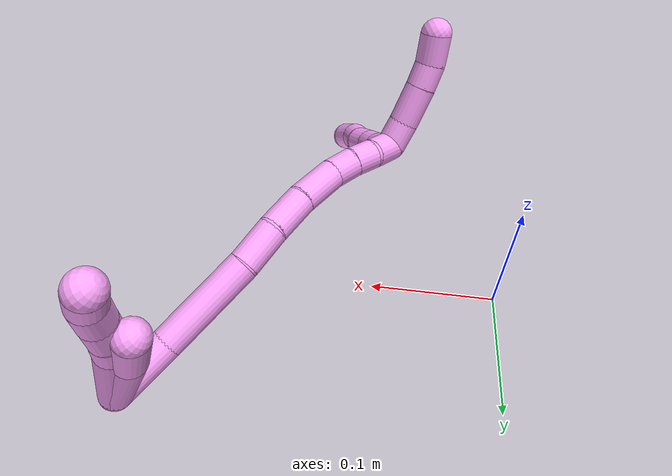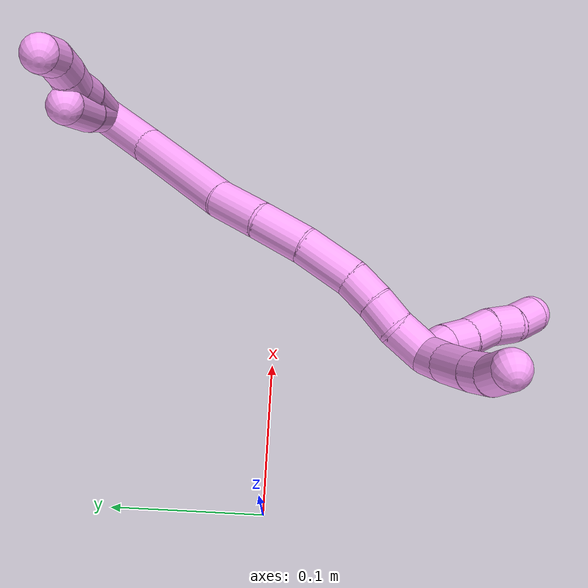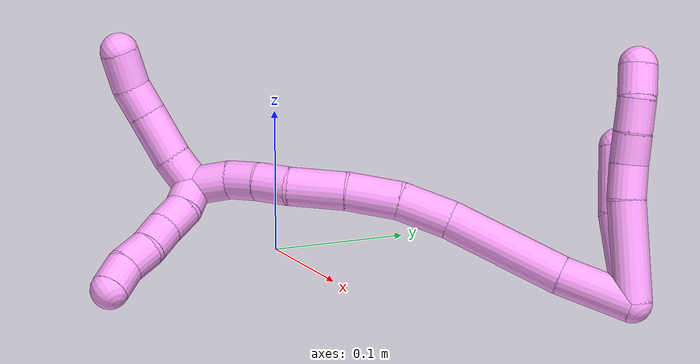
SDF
<sdf version="1.7">
 <world name="default">
  <model name="4">
   <static>0</static>
   <link name="4">
    <collision name="collision-cylinder-e_1_2_8">
     <pose>0.004061 0.021304 -0.024151 -2.41874 0.125442 -0.329258</pose>
     <geometry><cylinder><radius>0.0125</radius><length>0.06492</length></cylinder></geometry>
     <surface>
      <friction><ode><mu>1.16</mu><mu2>1.16</mu2><slip1>0</slip1><slip2>0</slip2></ode></friction>
      <contact><ode><kp>1e+06</kp><kd>1</kd><max_vel>0</max_vel><min_depth>0.001</min_depth></ode></contact>
     </surface>
    </collision>
    <visual name="visual-cylinder-e_1_2_8">
     <pose>0.004061 0.021304 -0.024151 -2.41874 0.125442 -0.329258</pose>
     <geometry><cylinder><radius>0.0125</radius><length>0.06492</length></cylinder></geometry>
     <material><ambient>1 0.65098 0.996078 1</ambient></material>
    </visual>
    <collision name="collision-cylinder-e_2_8_9">
     <pose>0.011093 0.050203 -0.056214 -2.37672 0.26451 -0.638805</pose>
     <geometry><cylinder><radius>0.0125</radius><length>0.022724</length></cylinder></geometry>
     <surface>
      <friction><ode><mu>1.16</mu><mu2>1.16</mu2><slip1>0</slip1><slip2>0</slip2></ode></friction>
      <contact><ode><kp>1e+06</kp><kd>1</kd><max_vel>0</max_vel><min_depth>0.001</min_depth></ode></contact>
     </surface>
    </collision>
    <visual name="visual-cylinder-e_2_8_9">
     <pose>0.011093 0.050203 -0.056214 -2.37672 0.26451 -0.638805</pose>
     <geometry><cylinder><radius>0.0125</radius><length>0.022724</length></cylinder></geometry>
     <material><ambient>1 0.65098 0.996078 1</ambient></material>
    </visual>
    <collision name="collision-cylinder-e_3_9_10">
     <pose>0.015741 0.065993 -0.069898 -2.18427 0.165821 -0.317593</pose>
     <geometry><cylinder><radius>0.0125</radius><length>0.020329</length></cylinder></geometry>
     <surface>
      <friction><ode><mu>1.16</mu><mu2>1.16</mu2><slip1>0</slip1><slip2>0</slip2></ode></friction>
      <contact><ode><kp>1e+06</kp><kd>1</kd><max_vel>0</max_vel><min_depth>0.001</min_depth></ode></contact>
     </surface>
    </collision>
    <visual name="visual-cylinder-e_3_9_10">
     <pose>0.015741 0.065993 -0.069898 -2.18427 0.165821 -0.317593</pose>
     <geometry><cylinder><radius>0.0125</radius><length>0.020329</length></cylinder></geometry>
     <material><ambient>1 0.65098 0.996078 1</ambient></material>
    </visual>
    <collision name="collision-cylinder-e_4_10_11">
     <pose>0.019818 0.08246 -0.0823 -2.24665 0.222632 -0.457639</pose>
     <geometry><cylinder><radius>0.0125</radius><length>0.021736</length></cylinder></geometry>
     <surface>
      <friction><ode><mu>1.16</mu><mu2>1.16</mu2><slip1>0</slip1><slip2>0</slip2></ode></friction>
      <contact><ode><kp>1e+06</kp><kd>1</kd><max_vel>0</max_vel><min_depth>0.001</min_depth></ode></contact>
     </surface>
    </collision>
    <visual name="visual-cylinder-e_4_10_11">
     <pose>0.019818 0.08246 -0.0823 -2.24665 0.222632 -0.457639</pose>
     <geometry><cylinder><radius>0.0125</radius><length>0.021736</length></cylinder></geometry>
     <material><ambient>1 0.65098 0.996078 1</ambient></material>
    </visual>
    <collision name="collision-cylinder-e_5_11_6">
     <pose>0.02538 0.096453 -0.096689 -2.50602 0.316905 -0.904424</pose>
     <geometry><cylinder><radius>0.0125</radius><length>0.020292</length></cylinder></geometry>
     <surface>
      <friction><ode><mu>1.16</mu><mu2>1.16</mu2><slip1>0</slip1><slip2>0</slip2></ode></friction>
      <contact><ode><kp>1e+06</kp><kd>1</kd><max_vel>0</max_vel><min_depth>0.001</min_depth></ode></contact>
     </surface>
    </collision>
    <visual name="visual-cylinder-e_5_11_6">
     <pose>0.02538 0.096453 -0.096689 -2.50602 0.316905 -0.904424</pose>
     <geometry><cylinder><radius>0.0125</radius><length>0.020292</length></cylinder></geometry>
     <material><ambient>1 0.65098 0.996078 1</ambient></material>
    </visual>
    <collision name="collision-cylinder-e_1_2_12">
     <pose>0.00427 0.01438 -0.024555 -2.61182 0.14895 -0.536844</pose>
     <geometry><cylinder><radius>0.0125</radius><length>0.057548</length></cylinder></geometry>
     <surface>
      <friction><ode><mu>1.16</mu><mu2>1.16</mu2><slip1>0</slip1><slip2>0</slip2></ode></friction>
      <contact><ode><kp>1e+06</kp><kd>1</kd><max_vel>0</max_vel><min_depth>0.001</min_depth></ode></contact>
     </surface>
    </collision>
    <visual name="visual-cylinder-e_1_2_12">
     <pose>0.00427 0.01438 -0.024555 -2.61182 0.14895 -0.536844</pose>
     <geometry><cylinder><radius>0.0125</radius><length>0.057548</length></cylinder></geometry>
     <material><ambient>1 0.65098 0.996078 1</ambient></material>
    </visual>
    <collision name="collision-cylinder-e_2_12_5">
     <pose>0.014211 0.041178 -0.065363 -2.48914 0.270455 -0.764745</pose>
     <geometry><cylinder><radius>0.0125</radius><length>0.042452</length></cylinder></geometry>
     <surface>
      <friction><ode><mu>1.16</mu><mu2>1.16</mu2><slip1>0</slip1><slip2>0</slip2></ode></friction>
      <contact><ode><kp>1e+06</kp><kd>1</kd><max_vel>0</max_vel><min_depth>0.001</min_depth></ode></contact>
     </surface>
    </collision>
    <visual name="visual-cylinder-e_2_12_5">
     <pose>0.014211 0.041178 -0.065363 -2.48914 0.270455 -0.764745</pose>
     <geometry><cylinder><radius>0.0125</radius><length>0.042452</length></cylinder></geometry>
     <material><ambient>1 0.65098 0.996078 1</ambient></material>
    </visual>
    <collision name="collision-cylinder-e_1_2_13">
     <pose>-0.014654 -0.003395 -0.018822 2.96317 -0.653763 -2.62568</pose>
     <geometry><cylinder><radius>0.0125</radius><length>0.048189</length></cylinder></geometry>
     <surface>
      <friction><ode><mu>1.16</mu><mu2>1.16</mu2><slip1>0</slip1><slip2>0</slip2></ode></friction>
      <contact><ode><kp>1e+06</kp><kd>1</kd><max_vel>0</max_vel><min_depth>0.001</min_depth></ode></contact>
     </surface>
    </collision>
    <visual name="visual-cylinder-e_1_2_13">
     <pose>-0.014654 -0.003395 -0.018822 2.96317 -0.653763 -2.62568</pose>
     <geometry><cylinder><radius>0.0125</radius><length>0.048189</length></cylinder></geometry>
     <material><ambient>1 0.65098 0.996078 1</ambient></material>
    </visual>
    <collision name="collision-cylinder-e_2_13_14">
     <pose>-0.051049 -0.009813 -0.070154 3.04883 -0.58747 -2.8371</pose>
     <geometry><cylinder><radius>0.0125</radius><length>0.078453</length></cylinder></geometry>
     <surface>
      <friction><ode><mu>1.16</mu><mu2>1.16</mu2><slip1>0</slip1><slip2>0</slip2></ode></friction>
      <contact><ode><kp>1e+06</kp><kd>1</kd><max_vel>0</max_vel><min_depth>0.001</min_depth></ode></contact>
     </surface>
    </collision>
    <visual name="visual-cylinder-e_2_13_14">
     <pose>-0.051049 -0.009813 -0.070154 3.04883 -0.58747 -2.8371</pose>
     <geometry><cylinder><radius>0.0125</radius><length>0.078453</length></cylinder></geometry>
     <material><ambient>1 0.65098 0.996078 1</ambient></material>
    </visual>
    <collision name="collision-cylinder-e_3_14_15">
     <pose>-0.084499 -0.014111 -0.115291 3.04104 -0.745164 -2.88552</pose>
     <geometry><cylinder><radius>0.0125</radius><length>0.034535</length></cylinder></geometry>
     <surface>
      <friction><ode><mu>1.16</mu><mu2>1.16</mu2><slip1>0</slip1><slip2>0</slip2></ode></friction>
      <contact><ode><kp>1e+06</kp><kd>1</kd><max_vel>0</max_vel><min_depth>0.001</min_depth></ode></contact>
     </surface>
    </collision>
    <visual name="visual-cylinder-e_3_14_15">
     <pose>-0.084499 -0.014111 -0.115291 3.04104 -0.745164 -2.88552</pose>
     <geometry><cylinder><radius>0.0125</radius><length>0.034535</length></cylinder></geometry>
     <material><ambient>1 0.65098 0.996078 1</ambient></material>
    </visual>
    <collision name="collision-cylinder-e_4_15_16">
     <pose>-0.109011 -0.019007 -0.138737 2.81856 -0.842897 -2.4444</pose>
     <geometry><cylinder><radius>0.0125</radius><length>0.034296</length></cylinder></geometry>
     <surface>
      <friction><ode><mu>1.16</mu><mu2>1.16</mu2><slip1>0</slip1><slip2>0</slip2></ode></friction>
      <contact><ode><kp>1e+06</kp><kd>1</kd><max_vel>0</max_vel><min_depth>0.001</min_depth></ode></contact>
     </surface>
    </collision>
    <visual name="visual-cylinder-e_4_15_16">
     <pose>-0.109011 -0.019007 -0.138737 2.81856 -0.842897 -2.4444</pose>
     <geometry><cylinder><radius>0.0125</radius><length>0.034296</length></cylinder></geometry>
     <material><ambient>1 0.65098 0.996078 1</ambient></material>
    </visual>
    <collision name="collision-cylinder-e_5_16_17">
     <pose>-0.135156 -0.028859 -0.160886 2.63884 -0.801112 -2.05127</pose>
     <geometry><cylinder><radius>0.0125</radius><length>0.03716</length></cylinder></geometry>
     <surface>
      <friction><ode><mu>1.16</mu><mu2>1.16</mu2><slip1>0</slip1><slip2>0</slip2></ode></friction>
      <contact><ode><kp>1e+06</kp><kd>1</kd><max_vel>0</max_vel><min_depth>0.001</min_depth></ode></contact>
     </surface>
    </collision>
    <visual name="visual-cylinder-e_5_16_17">
     <pose>-0.135156 -0.028859 -0.160886 2.63884 -0.801112 -2.05127</pose>
     <geometry><cylinder><radius>0.0125</radius><length>0.03716</length></cylinder></geometry>
     <material><ambient>1 0.65098 0.996078 1</ambient></material>
    </visual>
    <collision name="collision-cylinder-e_6_17_18">
     <pose>-0.154598 -0.039492 -0.179951 2.62414 -0.600726 -1.72742</pose>
     <geometry><cylinder><radius>0.0125</radius><length>0.02158</length></cylinder></geometry>
     <surface>
      <friction><ode><mu>1.16</mu><mu2>1.16</mu2><slip1>0</slip1><slip2>0</slip2></ode></friction>
      <contact><ode><kp>1e+06</kp><kd>1</kd><max_vel>0</max_vel><min_depth>0.001</min_depth></ode></contact>
     </surface>
    </collision>
    <visual name="visual-cylinder-e_6_17_18">
     <pose>-0.154598 -0.039492 -0.179951 2.62414 -0.600726 -1.72742</pose>
     <geometry><cylinder><radius>0.0125</radius><length>0.02158</length></cylinder></geometry>
     <material><ambient>1 0.65098 0.996078 1</ambient></material>
    </visual>
    <collision name="collision-cylinder-e_7_18_19">
     <pose>-0.165939 -0.048908 -0.194578 2.51266 -0.551457 -1.43185</pose>
     <geometry><cylinder><radius>0.0125</radius><length>0.02001</length></cylinder></geometry>
     <surface>
      <friction><ode><mu>1.16</mu><mu2>1.16</mu2><slip1>0</slip1><slip2>0</slip2></ode></friction>
      <contact><ode><kp>1e+06</kp><kd>1</kd><max_vel>0</max_vel><min_depth>0.001</min_depth></ode></contact>
     </surface>
    </collision>
    <visual name="visual-cylinder-e_7_18_19">
     <pose>-0.165939 -0.048908 -0.194578 2.51266 -0.551457 -1.43185</pose>
     <geometry><cylinder><radius>0.0125</radius><length>0.02001</length></cylinder></geometry>
     <material><ambient>1 0.65098 0.996078 1</ambient></material>
    </visual>
    <collision name="collision-cylinder-e_8_19_1">
     <pose>-0.179902 -0.061136 -0.207634 2.27783 -0.743266 -1.40388</pose>
     <geometry><cylinder><radius>0.0125</radius><length>0.025777</length></cylinder></geometry>
     <surface>
      <friction><ode><mu>1.16</mu><mu2>1.16</mu2><slip1>0</slip1><slip2>0</slip2></ode></friction>
      <contact><ode><kp>1e+06</kp><kd>1</kd><max_vel>0</max_vel><min_depth>0.001</min_depth></ode></contact>
     </surface>
    </collision>
    <visual name="visual-cylinder-e_8_19_1">
     <pose>-0.179902 -0.061136 -0.207634 2.27783 -0.743266 -1.40388</pose>
     <geometry><cylinder><radius>0.0125</radius><length>0.025777</length></cylinder></geometry>
     <material><ambient>1 0.65098 0.996078 1</ambient></material>
    </visual>
    <collision name="collision-cylinder-e_1_1_20">
     <pose>-0.195536 -0.070318 -0.206844 0.275713 -0.76312 -0.111214</pose>
     <geometry><cylinder><radius>0.0125</radius><length>0.02</length></cylinder></geometry>
     <surface>
      <friction><ode><mu>1.16</mu><mu2>1.16</mu2><slip1>0</slip1><slip2>0</slip2></ode></friction>
      <contact><ode><kp>1e+06</kp><kd>1</kd><max_vel>0</max_vel><min_depth>0.001</min_depth></ode></contact>
     </surface>
    </collision>
    <visual name="visual-cylinder-e_1_1_20">
     <pose>-0.195536 -0.070318 -0.206844 0.275713 -0.76312 -0.111214</pose>
     <geometry><cylinder><radius>0.0125</radius><length>0.02</length></cylinder></geometry>
     <material><ambient>1 0.65098 0.996078 1</ambient></material>
    </visual>
    <collision name="collision-cylinder-e_2_20_21">
     <pose>-0.211189 -0.074401 -0.195518 0.450732 -1.06364 -0.268159</pose>
     <geometry><cylinder><radius>0.0125</radius><length>0.02</length></cylinder></geometry>
     <surface>
      <friction><ode><mu>1.16</mu><mu2>1.16</mu2><slip1>0</slip1><slip2>0</slip2></ode></friction>
      <contact><ode><kp>1e+06</kp><kd>1</kd><max_vel>0</max_vel><min_depth>0.001</min_depth></ode></contact>
     </surface>
    </collision>
    <visual name="visual-cylinder-e_2_20_21">
     <pose>-0.211189 -0.074401 -0.195518 0.450732 -1.06364 -0.268159</pose>
     <geometry><cylinder><radius>0.0125</radius><length>0.02</length></cylinder></geometry>
     <material><ambient>1 0.65098 0.996078 1</ambient></material>
    </visual>
    <collision name="collision-cylinder-e_3_21_22">
     <pose>-0.228304 -0.07762 -0.185793 0.20317 -0.992578 -0.110283</pose>
     <geometry><cylinder><radius>0.0125</radius><length>0.02</length></cylinder></geometry>
     <surface>
      <friction><ode><mu>1.16</mu><mu2>1.16</mu2><slip1>0</slip1><slip2>0</slip2></ode></friction>
      <contact><ode><kp>1e+06</kp><kd>1</kd><max_vel>0</max_vel><min_depth>0.001</min_depth></ode></contact>
     </surface>
    </collision>
    <visual name="visual-cylinder-e_3_21_22">
     <pose>-0.228304 -0.07762 -0.185793 0.20317 -0.992578 -0.110283</pose>
     <geometry><cylinder><radius>0.0125</radius><length>0.02</length></cylinder></geometry>
     <material><ambient>1 0.65098 0.996078 1</ambient></material>
    </visual>
    <collision name="collision-cylinder-e_4_22_23">
     <pose>-0.245825 -0.081006 -0.177105 0.600313 -1.15464 -0.397858</pose>
     <geometry><cylinder><radius>0.0125</radius><length>0.02</length></cylinder></geometry>
     <surface>
      <friction><ode><mu>1.16</mu><mu2>1.16</mu2><slip1>0</slip1><slip2>0</slip2></ode></friction>
      <contact><ode><kp>1e+06</kp><kd>1</kd><max_vel>0</max_vel><min_depth>0.001</min_depth></ode></contact>
     </surface>
    </collision>
    <visual name="visual-cylinder-e_4_22_23">
     <pose>-0.245825 -0.081006 -0.177105 0.600313 -1.15464 -0.397858</pose>
     <geometry><cylinder><radius>0.0125</radius><length>0.02</length></cylinder></geometry>
     <material><ambient>1 0.65098 0.996078 1</ambient></material>
    </visual>
    <collision name="collision-cylinder-e_5_23_4">
     <pose>-0.262774 -0.085162 -0.167801 0.303952 -0.895096 -0.146777</pose>
     <geometry><cylinder><radius>0.0125</radius><length>0.02</length></cylinder></geometry>
     <surface>
      <friction><ode><mu>1.16</mu><mu2>1.16</mu2><slip1>0</slip1><slip2>0</slip2></ode></friction>
      <contact><ode><kp>1e+06</kp><kd>1</kd><max_vel>0</max_vel><min_depth>0.001</min_depth></ode></contact>
     </surface>
    </collision>
    <visual name="visual-cylinder-e_5_23_4">
     <pose>-0.262774 -0.085162 -0.167801 0.303952 -0.895096 -0.146777</pose>
     <geometry><cylinder><radius>0.0125</radius><length>0.02</length></cylinder></geometry>
     <material><ambient>1 0.65098 0.996078 1</ambient></material>
    </visual>
    <collision name="collision-cylinder-e_1_1_24">
     <pose>-0.192716 -0.064176 -0.223582 -2.73827 -0.367272 1.47495</pose>
     <geometry><cylinder><radius>0.0125</radius><length>0.022796</length></cylinder></geometry>
     <surface>
      <friction><ode><mu>1.16</mu><mu2>1.16</mu2><slip1>0</slip1><slip2>0</slip2></ode></friction>
      <contact><ode><kp>1e+06</kp><kd>1</kd><max_vel>0</max_vel><min_depth>0.001</min_depth></ode></contact>
     </surface>
    </collision>
    <visual name="visual-cylinder-e_1_1_24">
     <pose>-0.192716 -0.064176 -0.223582 -2.73827 -0.367272 1.47495</pose>
     <geometry><cylinder><radius>0.0125</radius><length>0.022796</length></cylinder></geometry>
     <material><ambient>1 0.65098 0.996078 1</ambient></material>
    </visual>
    <collision name="collision-cylinder-e_2_24_25">
     <pose>-0.201407 -0.052363 -0.247033 -2.63203 -0.285653 1.009</pose>
     <geometry><cylinder><radius>0.0125</radius><length>0.032635</length></cylinder></geometry>
     <surface>
      <friction><ode><mu>1.16</mu><mu2>1.16</mu2><slip1>0</slip1><slip2>0</slip2></ode></friction>
      <contact><ode><kp>1e+06</kp><kd>1</kd><max_vel>0</max_vel><min_depth>0.001</min_depth></ode></contact>
     </surface>
    </collision>
    <visual name="visual-cylinder-e_2_24_25">
     <pose>-0.201407 -0.052363 -0.247033 -2.63203 -0.285653 1.009</pose>
     <geometry><cylinder><radius>0.0125</radius><length>0.032635</length></cylinder></geometry>
     <material><ambient>1 0.65098 0.996078 1</ambient></material>
    </visual>
    <collision name="collision-cylinder-e_3_25_26">
     <pose>-0.209167 -0.039652 -0.26875 -2.57917 -0.320839 1.02121</pose>
     <geometry><cylinder><radius>0.0125</radius><length>0.020055</length></cylinder></geometry>
     <surface>
      <friction><ode><mu>1.16</mu><mu2>1.16</mu2><slip1>0</slip1><slip2>0</slip2></ode></friction>
      <contact><ode><kp>1e+06</kp><kd>1</kd><max_vel>0</max_vel><min_depth>0.001</min_depth></ode></contact>
     </surface>
    </collision>
    <visual name="visual-cylinder-e_3_25_26">
     <pose>-0.209167 -0.039652 -0.26875 -2.57917 -0.320839 1.02121</pose>
     <geometry><cylinder><radius>0.0125</radius><length>0.020055</length></cylinder></geometry>
     <material><ambient>1 0.65098 0.996078 1</ambient></material>
    </visual>
    <collision name="collision-cylinder-e_4_26_3">
     <pose>-0.214928 -0.025844 -0.284998 -2.32455 -0.213612 0.485582</pose>
     <geometry><cylinder><radius>0.0125</radius><length>0.024514</length></cylinder></geometry>
     <surface>
      <friction><ode><mu>1.16</mu><mu2>1.16</mu2><slip1>0</slip1><slip2>0</slip2></ode></friction>
      <contact><ode><kp>1e+06</kp><kd>1</kd><max_vel>0</max_vel><min_depth>0.001</min_depth></ode></contact>
     </surface>
    </collision>
    <visual name="visual-cylinder-e_4_26_3">
     <pose>-0.214928 -0.025844 -0.284998 -2.32455 -0.213612 0.485582</pose>
     <geometry><cylinder><radius>0.0125</radius><length>0.024514</length></cylinder></geometry>
     <material><ambient>1 0.65098 0.996078 1</ambient></material>
    </visual>
    <collision name="collision-sphere-3">
     <pose>-0.217526 -0.01711 -0.293196 0 -0 0</pose>
     <geometry><sphere><radius>0.0125</radius></sphere></geometry>
     <surface>
      <friction><ode><mu>1.16</mu><mu2>1.16</mu2><slip1>0</slip1><slip2>0</slip2></ode></friction>
      <contact><ode><kp>1e+06</kp><kd>1</kd><max_vel>0</max_vel><min_depth>0.001</min_depth></ode></contact>
     </surface>
    </collision>
    <visual name="visual-sphere-3">
     <pose>-0.217526 -0.01711 -0.293196 0 -0 0</pose>
     <geometry><sphere><radius>0.0125</radius></sphere></geometry>
     <material><ambient>1 0.65098 0.996078 1</ambient></material>
    </visual>
    <collision name="collision-sphere-26">
     <pose>-0.21233 -0.034578 -0.2768 0 -0 0</pose>
     <geometry><sphere><radius>0.0125</radius></sphere></geometry>
     <surface>
      <friction><ode><mu>1.16</mu><mu2>1.16</mu2><slip1>0</slip1><slip2>0</slip2></ode></friction>
      <contact><ode><kp>1e+06</kp><kd>1</kd><max_vel>0</max_vel><min_depth>0.001</min_depth></ode></contact>
     </surface>
    </collision>
    <visual name="visual-sphere-26">
     <pose>-0.21233 -0.034578 -0.2768 0 -0 0</pose>
     <geometry><sphere><radius>0.0125</radius></sphere></geometry>
     <material><ambient>1 0.65098 0.996078 1</ambient></material>
    </visual>
    <collision name="collision-sphere-25">
     <pose>-0.206005 -0.044726 -0.2607 0 -0 0</pose>
     <geometry><sphere><radius>0.0125</radius></sphere></geometry>
     <surface>
      <friction><ode><mu>1.16</mu><mu2>1.16</mu2><slip1>0</slip1><slip2>0</slip2></ode></friction>
      <contact><ode><kp>1e+06</kp><kd>1</kd><max_vel>0</max_vel><min_depth>0.001</min_depth></ode></contact>
     </surface>
    </collision>
    <visual name="visual-sphere-25">
     <pose>-0.206005 -0.044726 -0.2607 0 -0 0</pose>
     <geometry><sphere><radius>0.0125</radius></sphere></geometry>
     <material><ambient>1 0.65098 0.996078 1</ambient></material>
    </visual>
    <collision name="collision-sphere-24">
     <pose>-0.196809 -0.060001 -0.233366 0 -0 0</pose>
     <geometry><sphere><radius>0.0125</radius></sphere></geometry>
     <surface>
      <friction><ode><mu>1.16</mu><mu2>1.16</mu2><slip1>0</slip1><slip2>0</slip2></ode></friction>
      <contact><ode><kp>1e+06</kp><kd>1</kd><max_vel>0</max_vel><min_depth>0.001</min_depth></ode></contact>
     </surface>
    </collision>
    <visual name="visual-sphere-24">
     <pose>-0.196809 -0.060001 -0.233366 0 -0 0</pose>
     <geometry><sphere><radius>0.0125</radius></sphere></geometry>
     <material><ambient>1 0.65098 0.996078 1</ambient></material>
    </visual>
    <collision name="collision-sphere-4">
     <pose>-0.270577 -0.087034 -0.161833 0 -0 0</pose>
     <geometry><sphere><radius>0.0125</radius></sphere></geometry>
     <surface>
      <friction><ode><mu>1.16</mu><mu2>1.16</mu2><slip1>0</slip1><slip2>0</slip2></ode></friction>
      <contact><ode><kp>1e+06</kp><kd>1</kd><max_vel>0</max_vel><min_depth>0.001</min_depth></ode></contact>
     </surface>
    </collision>
    <visual name="visual-sphere-4">
     <pose>-0.270577 -0.087034 -0.161833 0 -0 0</pose>
     <geometry><sphere><radius>0.0125</radius></sphere></geometry>
     <material><ambient>1 0.65098 0.996078 1</ambient></material>
    </visual>
    <collision name="collision-sphere-23">
     <pose>-0.254972 -0.08329 -0.173769 0 -0 0</pose>
     <geometry><sphere><radius>0.0125</radius></sphere></geometry>
     <surface>
      <friction><ode><mu>1.16</mu><mu2>1.16</mu2><slip1>0</slip1><slip2>0</slip2></ode></friction>
      <contact><ode><kp>1e+06</kp><kd>1</kd><max_vel>0</max_vel><min_depth>0.001</min_depth></ode></contact>
     </surface>
    </collision>
    <visual name="visual-sphere-23">
     <pose>-0.254972 -0.08329 -0.173769 0 -0 0</pose>
     <geometry><sphere><radius>0.0125</radius></sphere></geometry>
     <material><ambient>1 0.65098 0.996078 1</ambient></material>
    </visual>
    <collision name="collision-sphere-22">
     <pose>-0.236679 -0.078723 -0.18044 0 -0 0</pose>
     <geometry><sphere><radius>0.0125</radius></sphere></geometry>
     <surface>
      <friction><ode><mu>1.16</mu><mu2>1.16</mu2><slip1>0</slip1><slip2>0</slip2></ode></friction>
      <contact><ode><kp>1e+06</kp><kd>1</kd><max_vel>0</max_vel><min_depth>0.001</min_depth></ode></contact>
     </surface>
    </collision>
    <visual name="visual-sphere-22">
     <pose>-0.236679 -0.078723 -0.18044 0 -0 0</pose>
     <geometry><sphere><radius>0.0125</radius></sphere></geometry>
     <material><ambient>1 0.65098 0.996078 1</ambient></material>
    </visual>
    <collision name="collision-sphere-21">
     <pose>-0.21993 -0.076517 -0.191146 0 -0 0</pose>
     <geometry><sphere><radius>0.0125</radius></sphere></geometry>
     <surface>
      <friction><ode><mu>1.16</mu><mu2>1.16</mu2><slip1>0</slip1><slip2>0</slip2></ode></friction>
      <contact><ode><kp>1e+06</kp><kd>1</kd><max_vel>0</max_vel><min_depth>0.001</min_depth></ode></contact>
     </surface>
    </collision>
    <visual name="visual-sphere-21">
     <pose>-0.21993 -0.076517 -0.191146 0 -0 0</pose>
     <geometry><sphere><radius>0.0125</radius></sphere></geometry>
     <material><ambient>1 0.65098 0.996078 1</ambient></material>
    </visual>
    <collision name="collision-sphere-20">
     <pose>-0.202447 -0.072286 -0.19989 0 -0 0</pose>
     <geometry><sphere><radius>0.0125</radius></sphere></geometry>
     <surface>
      <friction><ode><mu>1.16</mu><mu2>1.16</mu2><slip1>0</slip1><slip2>0</slip2></ode></friction>
      <contact><ode><kp>1e+06</kp><kd>1</kd><max_vel>0</max_vel><min_depth>0.001</min_depth></ode></contact>
     </surface>
    </collision>
    <visual name="visual-sphere-20">
     <pose>-0.202447 -0.072286 -0.19989 0 -0 0</pose>
     <geometry><sphere><radius>0.0125</radius></sphere></geometry>
     <material><ambient>1 0.65098 0.996078 1</ambient></material>
    </visual>
    <collision name="collision-sphere-6">
     <pose>0.028541 0.102176 -0.104447 0 -0 0</pose>
     <geometry><sphere><radius>0.0125</radius></sphere></geometry>
     <surface>
      <friction><ode><mu>1.16</mu><mu2>1.16</mu2><slip1>0</slip1><slip2>0</slip2></ode></friction>
      <contact><ode><kp>1e+06</kp><kd>1</kd><max_vel>0</max_vel><min_depth>0.001</min_depth></ode></contact>
     </surface>
    </collision>
    <visual name="visual-sphere-6">
     <pose>0.028541 0.102176 -0.104447 0 -0 0</pose>
     <geometry><sphere><radius>0.0125</radius></sphere></geometry>
     <material><ambient>1 0.65098 0.996078 1</ambient></material>
    </visual>
    <collision name="collision-sphere-11">
     <pose>0.022218 0.090729 -0.088931 0 -0 0</pose>
     <geometry><sphere><radius>0.0125</radius></sphere></geometry>
     <surface>
      <friction><ode><mu>1.16</mu><mu2>1.16</mu2><slip1>0</slip1><slip2>0</slip2></ode></friction>
      <contact><ode><kp>1e+06</kp><kd>1</kd><max_vel>0</max_vel><min_depth>0.001</min_depth></ode></contact>
     </surface>
    </collision>
    <visual name="visual-sphere-11">
     <pose>0.022218 0.090729 -0.088931 0 -0 0</pose>
     <geometry><sphere><radius>0.0125</radius></sphere></geometry>
     <material><ambient>1 0.65098 0.996078 1</ambient></material>
    </visual>
    <collision name="collision-sphere-10">
     <pose>0.017419 0.07419 -0.075669 0 -0 0</pose>
     <geometry><sphere><radius>0.0125</radius></sphere></geometry>
     <surface>
      <friction><ode><mu>1.16</mu><mu2>1.16</mu2><slip1>0</slip1><slip2>0</slip2></ode></friction>
      <contact><ode><kp>1e+06</kp><kd>1</kd><max_vel>0</max_vel><min_depth>0.001</min_depth></ode></contact>
     </surface>
    </collision>
    <visual name="visual-sphere-10">
     <pose>0.017419 0.07419 -0.075669 0 -0 0</pose>
     <geometry><sphere><radius>0.0125</radius></sphere></geometry>
     <material><ambient>1 0.65098 0.996078 1</ambient></material>
    </visual>
    <collision name="collision-sphere-9">
     <pose>0.014063 0.057796 -0.064126 0 -0 0</pose>
     <geometry><sphere><radius>0.0125</radius></sphere></geometry>
     <surface>
      <friction><ode><mu>1.16</mu><mu2>1.16</mu2><slip1>0</slip1><slip2>0</slip2></ode></friction>
      <contact><ode><kp>1e+06</kp><kd>1</kd><max_vel>0</max_vel><min_depth>0.001</min_depth></ode></contact>
     </surface>
    </collision>
    <visual name="visual-sphere-9">
     <pose>0.014063 0.057796 -0.064126 0 -0 0</pose>
     <geometry><sphere><radius>0.0125</radius></sphere></geometry>
     <material><ambient>1 0.65098 0.996078 1</ambient></material>
    </visual>
    <collision name="collision-sphere-2">
     <geometry><sphere><radius>0.0125</radius></sphere></geometry>
     <surface>
      <friction><ode><mu>1.16</mu><mu2>1.16</mu2><slip1>0</slip1><slip2>0</slip2></ode></friction>
      <contact><ode><kp>1e+06</kp><kd>1</kd><max_vel>0</max_vel><min_depth>0.001</min_depth></ode></contact>
     </surface>
    </collision>
    <visual name="visual-sphere-2">
     <geometry><sphere><radius>0.0125</radius></sphere></geometry>
     <material><ambient>1 0.65098 0.996078 1</ambient></material>
    </visual>
    <collision name="collision-sphere-19">
     <pose>-0.17118 -0.053921 -0.201469 0 -0 0</pose>
     <geometry><sphere><radius>0.0125</radius></sphere></geometry>
     <surface>
      <friction><ode><mu>1.16</mu><mu2>1.16</mu2><slip1>0</slip1><slip2>0</slip2></ode></friction>
      <contact><ode><kp>1e+06</kp><kd>1</kd><max_vel>0</max_vel><min_depth>0.001</min_depth></ode></contact>
     </surface>
    </collision>
    <visual name="visual-sphere-19">
     <pose>-0.17118 -0.053921 -0.201469 0 -0 0</pose>
     <geometry><sphere><radius>0.0125</radius></sphere></geometry>
     <material><ambient>1 0.65098 0.996078 1</ambient></material>
    </visual>
    <collision name="collision-sphere-8">
     <pose>0.008122 0.042609 -0.048302 0 -0 0</pose>
     <geometry><sphere><radius>0.0125</radius></sphere></geometry>
     <surface>
      <friction><ode><mu>1.16</mu><mu2>1.16</mu2><slip1>0</slip1><slip2>0</slip2></ode></friction>
      <contact><ode><kp>1e+06</kp><kd>1</kd><max_vel>0</max_vel><min_depth>0.001</min_depth></ode></contact>
     </surface>
    </collision>
    <visual name="visual-sphere-8">
     <pose>0.008122 0.042609 -0.048302 0 -0 0</pose>
     <geometry><sphere><radius>0.0125</radius></sphere></geometry>
     <material><ambient>1 0.65098 0.996078 1</ambient></material>
    </visual>
    <collision name="collision-sphere-12">
     <pose>0.00854 0.028759 -0.04911 0 -0 0</pose>
     <geometry><sphere><radius>0.0125</radius></sphere></geometry>
     <surface>
      <friction><ode><mu>1.16</mu><mu2>1.16</mu2><slip1>0</slip1><slip2>0</slip2></ode></friction>
      <contact><ode><kp>1e+06</kp><kd>1</kd><max_vel>0</max_vel><min_depth>0.001</min_depth></ode></contact>
     </surface>
    </collision>
    <visual name="visual-sphere-12">
     <pose>0.00854 0.028759 -0.04911 0 -0 0</pose>
     <geometry><sphere><radius>0.0125</radius></sphere></geometry>
     <material><ambient>1 0.65098 0.996078 1</ambient></material>
    </visual>
    <collision name="collision-sphere-5">
     <pose>0.019882 0.053596 -0.081616 0 -0 0</pose>
     <geometry><sphere><radius>0.0125</radius></sphere></geometry>
     <surface>
      <friction><ode><mu>1.16</mu><mu2>1.16</mu2><slip1>0</slip1><slip2>0</slip2></ode></friction>
      <contact><ode><kp>1e+06</kp><kd>1</kd><max_vel>0</max_vel><min_depth>0.001</min_depth></ode></contact>
     </surface>
    </collision>
    <visual name="visual-sphere-5">
     <pose>0.019882 0.053596 -0.081616 0 -0 0</pose>
     <geometry><sphere><radius>0.0125</radius></sphere></geometry>
     <material><ambient>1 0.65098 0.996078 1</ambient></material>
    </visual>
    <collision name="collision-sphere-13">
     <pose>-0.029307 -0.006789 -0.037645 0 -0 0</pose>
     <geometry><sphere><radius>0.0125</radius></sphere></geometry>
     <surface>
      <friction><ode><mu>1.16</mu><mu2>1.16</mu2><slip1>0</slip1><slip2>0</slip2></ode></friction>
      <contact><ode><kp>1e+06</kp><kd>1</kd><max_vel>0</max_vel><min_depth>0.001</min_depth></ode></contact>
     </surface>
    </collision>
    <visual name="visual-sphere-13">
     <pose>-0.029307 -0.006789 -0.037645 0 -0 0</pose>
     <geometry><sphere><radius>0.0125</radius></sphere></geometry>
     <material><ambient>1 0.65098 0.996078 1</ambient></material>
    </visual>
    <collision name="collision-sphere-14">
     <pose>-0.07279 -0.012837 -0.102664 0 -0 0</pose>
     <geometry><sphere><radius>0.0125</radius></sphere></geometry>
     <surface>
      <friction><ode><mu>1.16</mu><mu2>1.16</mu2><slip1>0</slip1><slip2>0</slip2></ode></friction>
      <contact><ode><kp>1e+06</kp><kd>1</kd><max_vel>0</max_vel><min_depth>0.001</min_depth></ode></contact>
     </surface>
    </collision>
    <visual name="visual-sphere-14">
     <pose>-0.07279 -0.012837 -0.102664 0 -0 0</pose>
     <geometry><sphere><radius>0.0125</radius></sphere></geometry>
     <material><ambient>1 0.65098 0.996078 1</ambient></material>
    </visual>
    <collision name="collision-sphere-15">
     <pose>-0.096208 -0.015385 -0.127918 0 -0 0</pose>
     <geometry><sphere><radius>0.0125</radius></sphere></geometry>
     <surface>
      <friction><ode><mu>1.16</mu><mu2>1.16</mu2><slip1>0</slip1><slip2>0</slip2></ode></friction>
      <contact><ode><kp>1e+06</kp><kd>1</kd><max_vel>0</max_vel><min_depth>0.001</min_depth></ode></contact>
     </surface>
    </collision>
    <visual name="visual-sphere-15">
     <pose>-0.096208 -0.015385 -0.127918 0 -0 0</pose>
     <geometry><sphere><radius>0.0125</radius></sphere></geometry>
     <material><ambient>1 0.65098 0.996078 1</ambient></material>
    </visual>
    <collision name="collision-sphere-16">
     <pose>-0.121813 -0.022629 -0.149556 0 -0 0</pose>
     <geometry><sphere><radius>0.0125</radius></sphere></geometry>
     <surface>
      <friction><ode><mu>1.16</mu><mu2>1.16</mu2><slip1>0</slip1><slip2>0</slip2></ode></friction>
      <contact><ode><kp>1e+06</kp><kd>1</kd><max_vel>0</max_vel><min_depth>0.001</min_depth></ode></contact>
     </surface>
    </collision>
    <visual name="visual-sphere-16">
     <pose>-0.121813 -0.022629 -0.149556 0 -0 0</pose>
     <geometry><sphere><radius>0.0125</radius></sphere></geometry>
     <material><ambient>1 0.65098 0.996078 1</ambient></material>
    </visual>
    <collision name="collision-sphere-17">
     <pose>-0.148499 -0.035089 -0.172216 0 -0 0</pose>
     <geometry><sphere><radius>0.0125</radius></sphere></geometry>
     <surface>
      <friction><ode><mu>1.16</mu><mu2>1.16</mu2><slip1>0</slip1><slip2>0</slip2></ode></friction>
      <contact><ode><kp>1e+06</kp><kd>1</kd><max_vel>0</max_vel><min_depth>0.001</min_depth></ode></contact>
     </surface>
    </collision>
    <visual name="visual-sphere-17">
     <pose>-0.148499 -0.035089 -0.172216 0 -0 0</pose>
     <geometry><sphere><radius>0.0125</radius></sphere></geometry>
     <material><ambient>1 0.65098 0.996078 1</ambient></material>
    </visual>
    <collision name="collision-sphere-18">
     <pose>-0.160697 -0.043895 -0.187687 0 -0 0</pose>
     <geometry><sphere><radius>0.0125</radius></sphere></geometry>
     <surface>
      <friction><ode><mu>1.16</mu><mu2>1.16</mu2><slip1>0</slip1><slip2>0</slip2></ode></friction>
      <contact><ode><kp>1e+06</kp><kd>1</kd><max_vel>0</max_vel><min_depth>0.001</min_depth></ode></contact>
     </surface>
    </collision>
    <visual name="visual-sphere-18">
     <pose>-0.160697 -0.043895 -0.187687 0 -0 0</pose>
     <geometry><sphere><radius>0.0125</radius></sphere></geometry>
     <material><ambient>1 0.65098 0.996078 1</ambient></material>
    </visual>
    <collision name="collision-sphere-1">
     <pose>-0.188624 -0.068351 -0.213798 0 -0 0</pose>
     <geometry><sphere><radius>0.0125</radius></sphere></geometry>
     <surface>
      <friction><ode><mu>1.16</mu><mu2>1.16</mu2><slip1>0</slip1><slip2>0</slip2></ode></friction>
      <contact><ode><kp>1e+06</kp><kd>1</kd><max_vel>0</max_vel><min_depth>0.001</min_depth></ode></contact>
     </surface>
    </collision>
    <visual name="visual-sphere-1">
     <pose>-0.188624 -0.068351 -0.213798 0 -0 0</pose>
     <geometry><sphere><radius>0.0125</radius></sphere></geometry>
     <material><ambient>1 0.65098 0.996078 1</ambient></material>
    </visual>
    <inertial>
     <pose>-0.091141 -0.011643 -0.120879 0 -0 0</pose>
     <mass>0.75</mass>
     <inertia><ixx>-5.6e-05</ixx><ixy>0</ixy><ixz>0</ixz><iyy>-2e-06</iyy><iyz>0</iyz><izz>-1.7e-05</izz></inertia>
    </inertial>
   </link>
   <pose>0.272156 0.128162 0.012495 2.21309 -0.060955 1.73911</pose>
  </model>
 </world>
</sdf>
